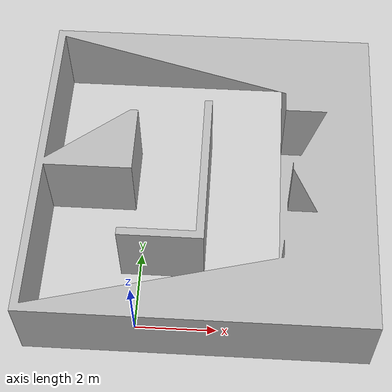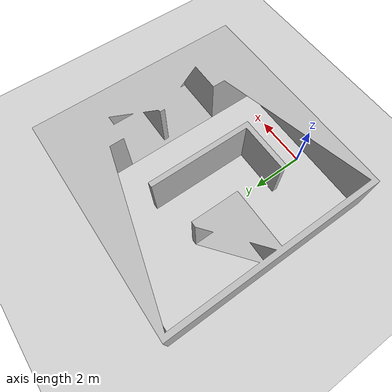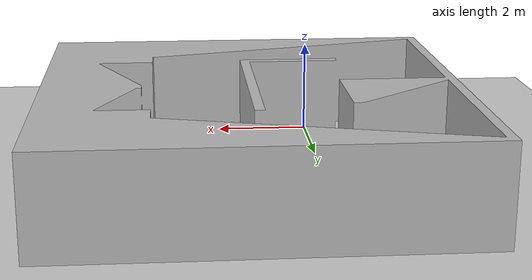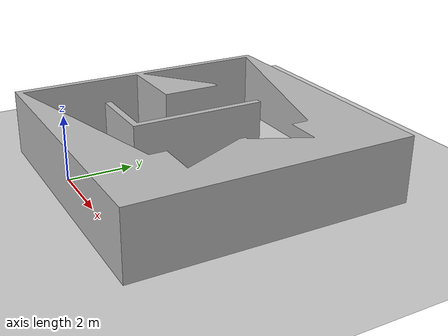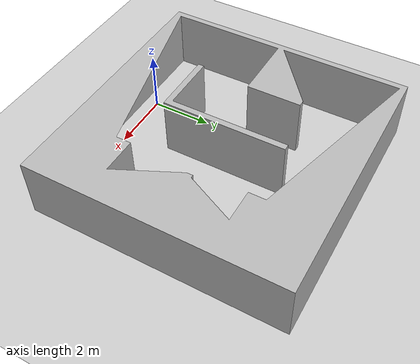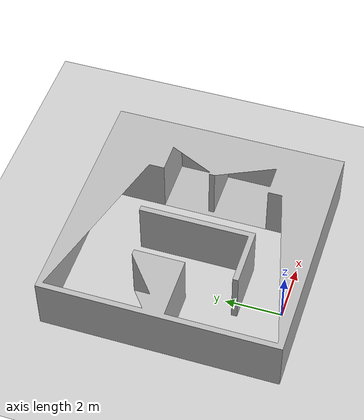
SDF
<?xml version="1.0"?>
<sdf version="1.6">
  <world name="default">
    <plugin filename="gz-sim-physics-system" name="gz::sim::systems::Physics"></plugin>
    <plugin filename="gz-sim-user-commands-system" name="gz::sim::systems::UserCommands"></plugin>
    <plugin filename="gz-sim-scene-broadcaster-system" name="gz::sim::systems::SceneBroadcaster"></plugin>
    <plugin filename="gz-sim-sensors-system" name="gz::sim::systems::Sensors">
      <render_engine>ogre2</render_engine>
    </plugin>
    <plugin filename="gz-sim-imu-system" name="gz::sim::systems::Imu"></plugin>

    <include>
      <uri>https://fuel.gazebosim.org/1.0/OpenRobotics/models/Ground Plane</uri>
    </include>

    <include>
      <uri>https://fuel.gazebosim.org/1.0/OpenRobotics/models/Sun</uri>
    </include>

    <include>
      <uri>model://turtlebot3_closedmaze</uri>
      <pose>-0.49 -2.12 0 0 0 1.57</pose>
    </include>

  </world>
</sdf>

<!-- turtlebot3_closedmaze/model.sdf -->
<sdf version="1.6">
  <model name="turtlebot3_closedmaze">
    <static>true</static>
    <link name="link">
      <visual name="visual">
        <geometry>
          <mesh>
            <uri>meshes/ClosedMaze.obj</uri>
            <scale>2 2 2</scale>
          </mesh>
        </geometry>
      </visual>
      <collision name="collision">
        <geometry>
          <mesh>
            <uri>meshes/ClosedMaze.obj</uri>
            <scale>2 2 2</scale>
          </mesh>
        </geometry>
      </collision>
    </link>
  </model>
</sdf>
